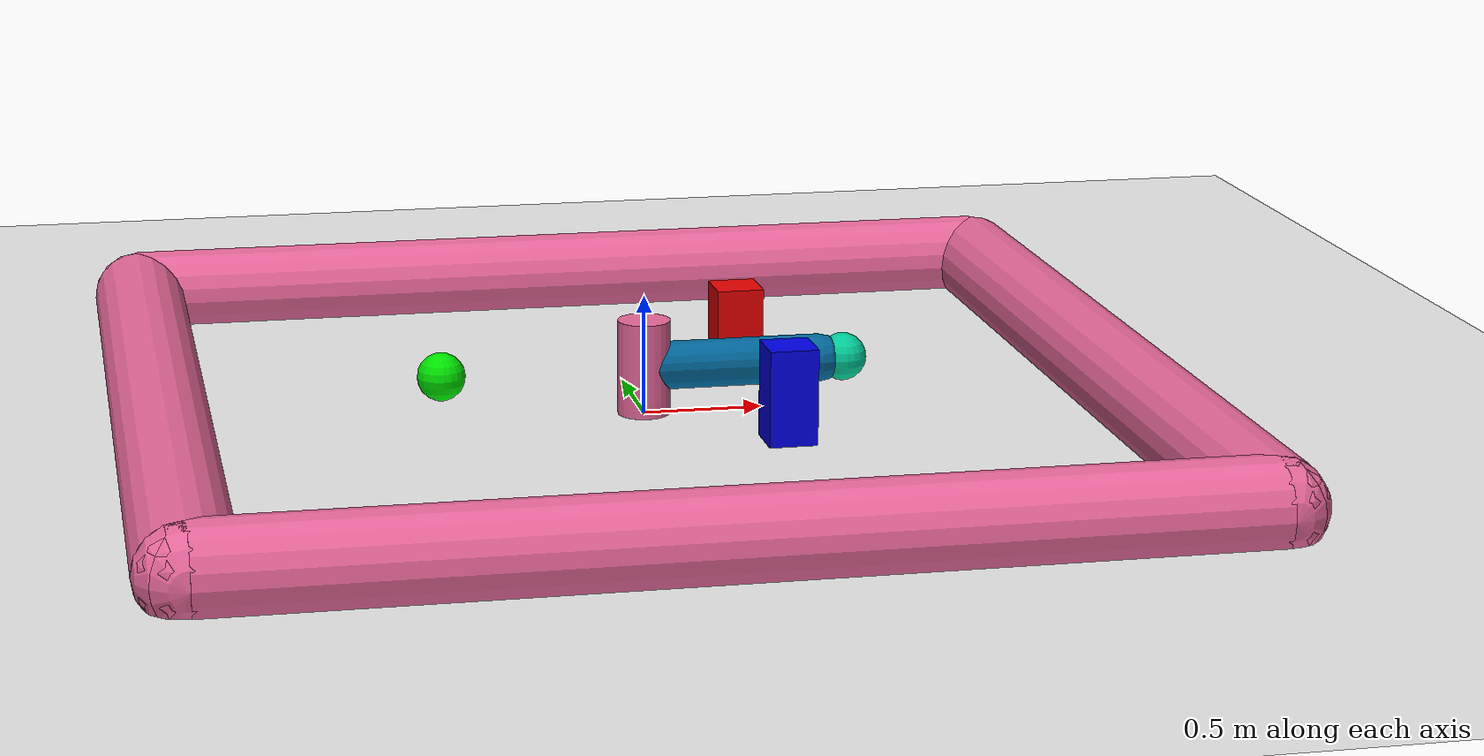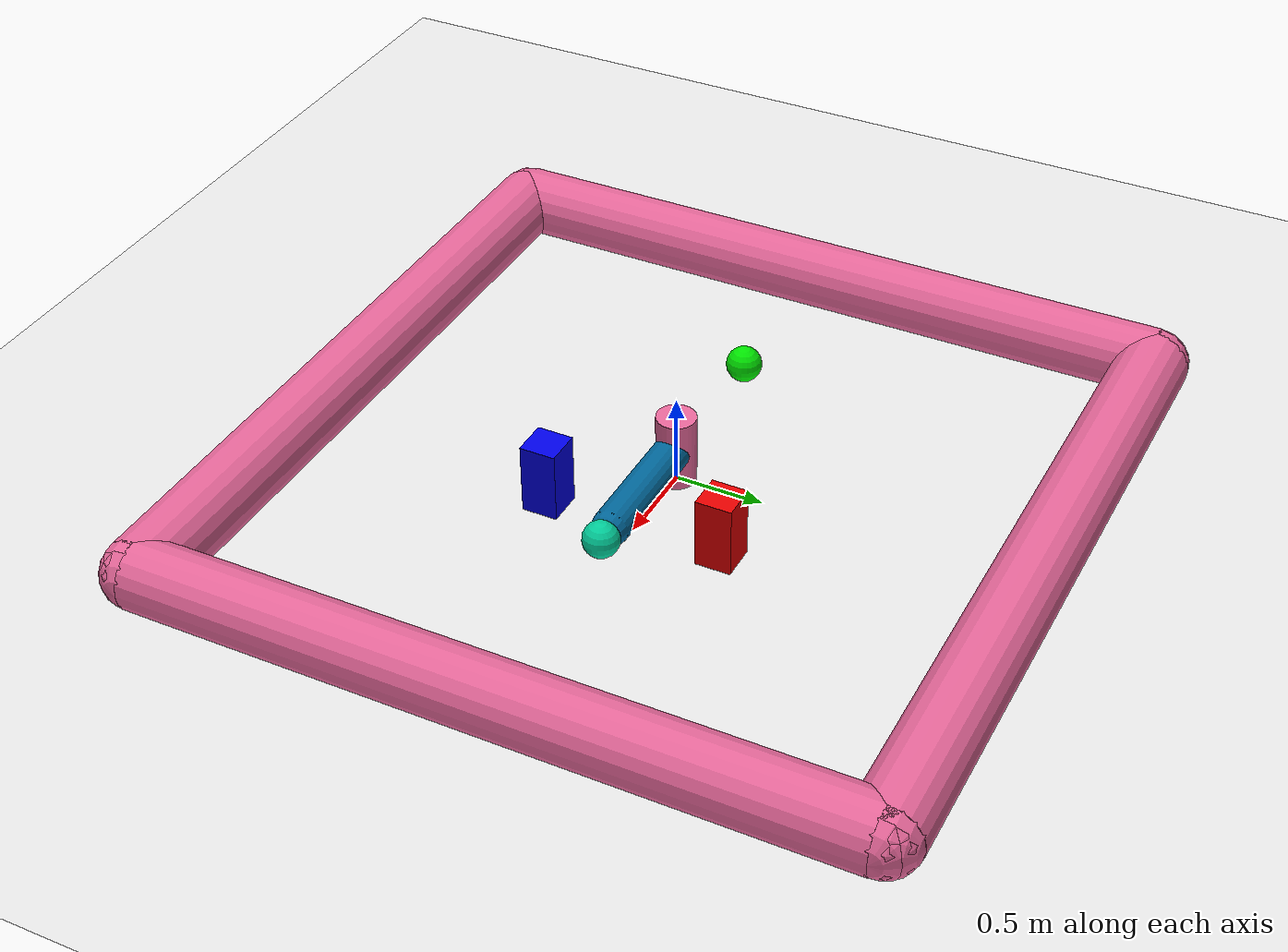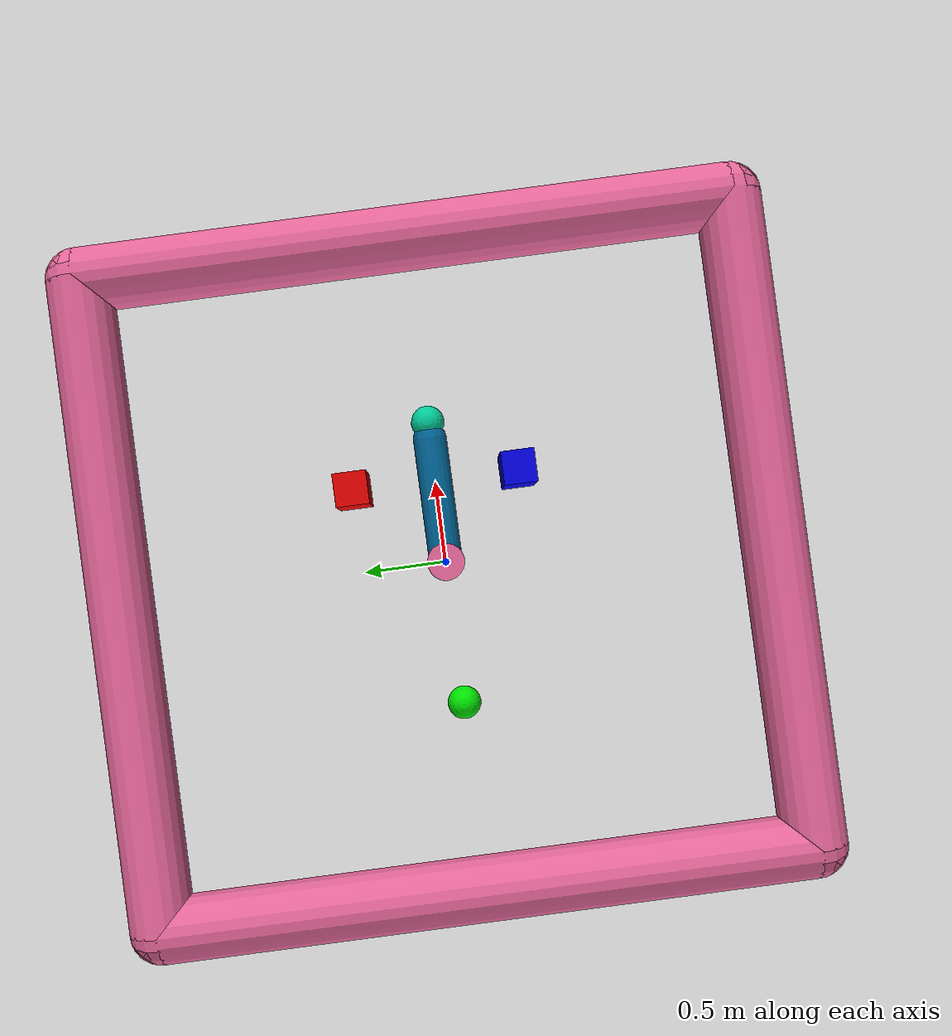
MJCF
<mujoco model="reacher">
    <compiler angle="radian" inertiafromgeom="auto"/>
    <default>
        <joint armature="0.01" damping="0.1" limited="true" frictionloss="0.5"/>
        <geom friction="0.1 0.1 0.1" rgba="0.7 0.7 0 1" condim="3" density="10" solref="0.01 1.1"/>
    </default>
    <option gravity="0 0 -9.81" integrator="RK4" timestep="0.01" noslip_iterations="5"/>
    <worldbody>
        <!-- Arena -->
        <geom conaffinity="1" contype="0" condim="3" name="ground" pos="0 0 0" rgba="0.9 0.9 0.9 1" size="5 5 10" type="plane"/>
        <geom contype="0" fromto="-2 -2 .1 2 -2 .1" name="sideS" rgba="0.9 0.4 0.6 1" size=".2" type="capsule"/>
        <geom contype="0" fromto=" 2 -2 .1 2  2 .1" name="sideE" rgba="0.9 0.4 0.6 1" size=".2" type="capsule"/>
        <geom contype="0" fromto="-2  2 .1 2  2 .1" name="sideN" rgba="0.9 0.4 0.6 1" size=".2" type="capsule"/>
        <geom contype="0" fromto="-2 -2 .1 -2 2 .1" name="sideW" rgba="0.9 0.4 0.6 1" size=".2" type="capsule"/>

        <!-- Arm -->
        <geom conaffinity="0" contype="0" fromto="0 0 0 0 0 0.4" name="root" rgba="0.9 0.4 0.6 1" size=".11" type="cylinder"/>
        <body name="body0" pos="0 0 .2">
            <geom conaffinity="0" contype="1" fromto="0 0 0 0.75 0 0" name="link0" rgba="0.0 0.4 0.6 1" size=".1" type="capsule"/>
            <joint axis="0 0 1" limited="false" name="joint0" pos="0 0 0" type="hinge"/>
            <body name="fingertip" pos="0.85 0 0">
                <geom conaffinity="0" contype="1" name="fingertip" pos="0 0 0" rgba="0.0 0.8 0.6 1" size=".1" type="sphere"/>
            </body>
        </body>
        <!-- Target -->
        <body name="target" pos="-0.85 -0 .2">
            <site type="sphere" size="0.1" rgba="0 0.9 0 1"/>
        </body>
        <body name="box1" pos=".5 .5 0.2">
            <joint type="free" limited="false"/>
            <inertial pos="0 0 0" mass="3" diaginertia="0.0000133 0.0000133 0.0000133"/>
            <geom name="box1" condim="3" size="0.1 0.1 0.2" rgba="0.9 0 0 1" type="box"/>
        </body>
        <body name="box2" pos=".5 -.5 0.2">
            <joint type="free" limited="false"/>
            <inertial pos="0 0 0" mass="4" diaginertia="0.0000133 0.0000133 0.0000133"/>
            <geom name="box2" condim="3" size="0.1 0.1 0.2" rgba="0 0 0.9 1" type="box"/>
        </body>
    </worldbody>
    <actuator>
        <motor ctrllimited="true" ctrlrange="-1.0 1.0" gear="3.0" joint="joint0"/>
    </actuator>
</mujoco>
